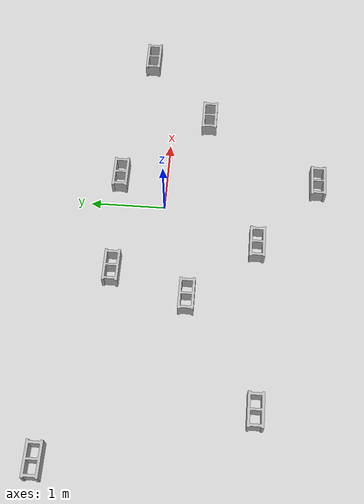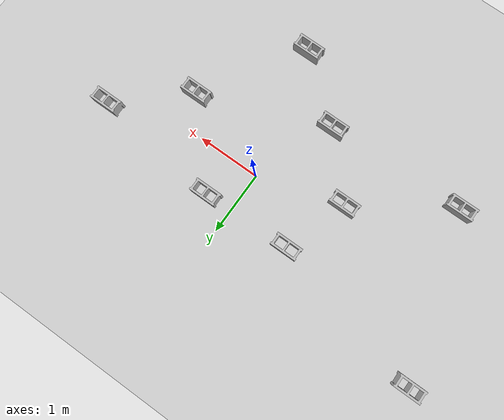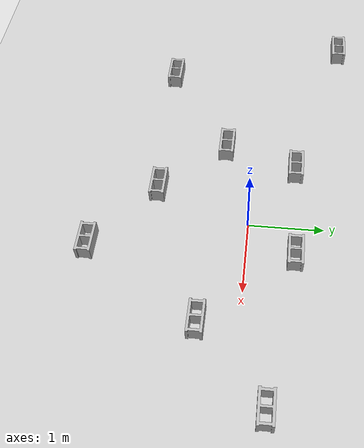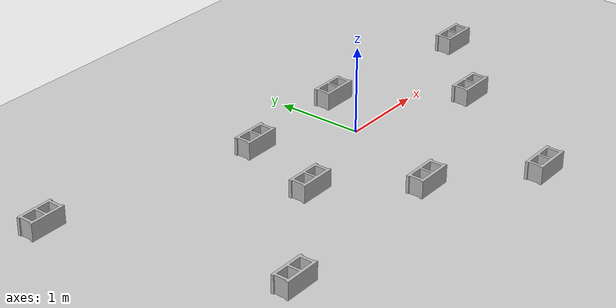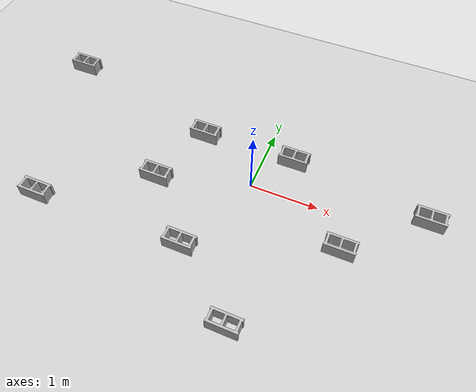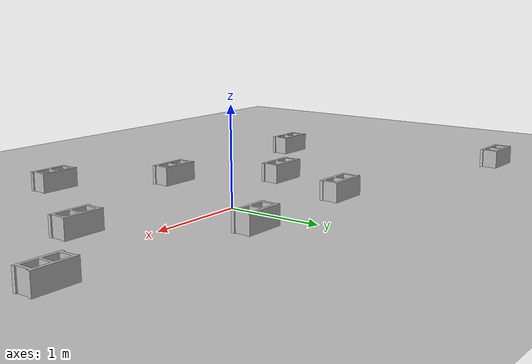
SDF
<sdf version="1.7">
 <world name="default">
  <light name="sun" type="directional">
   <pose>0 0 10 0 -0 0</pose>
   <diffuse>0.8 0.8 0.8 1</diffuse>
   <specular>0.2 0.2 0.2 1</specular>
   <attenuation>
    <range>1000</range>
    <constant>0.9</constant>
    <linear>0.01</linear>
    <quadratic>0.001</quadratic>
   </attenuation>
   <direction>-0.5 0.1 -0.9</direction>
   <spot><inner_angle>0</inner_angle><outer_angle>0</outer_angle><falloff>0</falloff></spot>
  </light>
  <model name="ground_plane">
   <static>1</static>
   <link name="link">
    <collision name="collision">
     <geometry><plane><normal>0 0 1</normal><size>100 100</size></plane></geometry>
     <surface>
      <contact><collide_bitmask>65535</collide_bitmask></contact>
      <friction><ode><mu>100</mu><mu2>50</mu2></ode></friction>
     </surface>
    </collision>
    <visual name="visual">
     <cast_shadows>0</cast_shadows>
     <geometry><plane><normal>0 0 1</normal><size>100 100</size></plane></geometry>
     <material>
      <script><uri>file://media/materials/scripts/gazebo.material</uri><name>Gazebo/Grey</name></script>
     </material>
    </visual>
   </link>
  </model>
  <gravity>0 0 -9.8</gravity>
  <magnetic_field>6e-06 2.3e-05 -4.2e-05</magnetic_field>
  <atmosphere type="adiabatic"/>
  <physics type="ode">
   <max_step_size>0.001</max_step_size>
   <real_time_factor>1</real_time_factor>
   <real_time_update_rate>1000</real_time_update_rate>
  </physics>
  <scene><ambient>0.4 0.4 0.4 1</ambient><background>0.7 0.7 0.7 1</background><shadows>1</shadows></scene>
  <audio><device>default</device></audio>
  <spherical_coordinates>
   <surface_model>EARTH_WGS84</surface_model>
   <latitude_deg>0</latitude_deg>
   <longitude_deg>0</longitude_deg>
   <elevation>0</elevation>
   <heading_deg>0</heading_deg>
  </spherical_coordinates>
  <model name="cinder_block">
   <link name="link">
    <inertial>
     <pose>0 0 0.1016 0 -0 0</pose>
     <mass>5</mass>
     <inertia>
      <ixx>0.028705</ixx>
      <ixy>0</ixy>
      <iyy>0.073708</iyy>
      <ixz>0</ixz>
      <iyz>0</iyz>
      <izz>0.06908</izz>
     </inertia>
    </inertial>
    <visual name="visual">
     <geometry><mesh><uri>model://cinder_block/meshes/cinder_block.dae</uri></mesh></geometry>
    </visual>
    <collision name="left">
     <pose>0 -0.08465 0.1016 0 -0 0</pose>
     <geometry><box><size>0.43495 0.0339 0.2032</size></box></geometry>
     <surface>
      <contact><ode><max_vel>0.1</max_vel><min_depth>0.001</min_depth></ode></contact>
      <friction><ode><mu>1</mu><mu2>1</mu2></ode></friction>
     </surface>
    </collision>
    <collision name="right">
     <pose>0 0.08465 0.1016 0 -0 0</pose>
     <geometry><box><size>0.43495 0.0339 0.2032</size></box></geometry>
     <surface>
      <contact><ode><max_vel>0.1</max_vel><min_depth>0.001</min_depth></ode></contact>
      <friction><ode><mu>1</mu><mu2>1</mu2></ode></friction>
     </surface>
    </collision>
    <collision name="front">
     <pose>0.18625 0 0.1016 0 -0 0</pose>
     <geometry><box><size>0.0339 0.1354 0.203</size></box></geometry>
     <surface>
      <contact><ode><max_vel>0.1</max_vel><min_depth>0.001</min_depth></ode></contact>
      <friction><ode><mu>1</mu><mu2>1</mu2></ode></friction>
     </surface>
    </collision>
    <collision name="middle">
     <pose>0 0 0.1016 0 -0 0</pose>
     <geometry><box><size>0.0339 0.1354 0.203</size></box></geometry>
     <surface>
      <contact><ode><max_vel>0.1</max_vel><min_depth>0.001</min_depth></ode></contact>
      <friction><ode><mu>1</mu><mu2>1</mu2></ode></friction>
     </surface>
    </collision>
    <collision name="back">
     <pose>-0.18625 0 0.1016 0 -0 0</pose>
     <geometry><box><size>0.0339 0.1354 0.203</size></box></geometry>
     <surface>
      <contact><ode><max_vel>0.1</max_vel><min_depth>0.001</min_depth></ode></contact>
      <friction><ode><mu>1</mu><mu2>1</mu2></ode></friction>
     </surface>
    </collision>
   </link>
   <pose>-0.977687 0.600716 -6e-06 -1e-06 2.8e-05 -0</pose>
  </model>
  <model name="cinder_block_0">
   <link name="link">
    <inertial>
     <pose>0 0 0.1016 0 -0 0</pose>
     <mass>5</mass>
     <inertia>
      <ixx>0.028705</ixx>
      <ixy>0</ixy>
      <iyy>0.073708</iyy>
      <ixz>0</ixz>
      <iyz>0</iyz>
      <izz>0.06908</izz>
     </inertia>
    </inertial>
    <visual name="visual">
     <geometry><mesh><uri>model://cinder_block/meshes/cinder_block.dae</uri></mesh></geometry>
    </visual>
    <collision name="left">
     <pose>0 -0.08465 0.1016 0 -0 0</pose>
     <geometry><box><size>0.43495 0.0339 0.2032</size></box></geometry>
     <surface>
      <contact><ode><max_vel>0.1</max_vel><min_depth>0.001</min_depth></ode></contact>
      <friction><ode><mu>1</mu><mu2>1</mu2></ode></friction>
     </surface>
    </collision>
    <collision name="right">
     <pose>0 0.08465 0.1016 0 -0 0</pose>
     <geometry><box><size>0.43495 0.0339 0.2032</size></box></geometry>
     <surface>
      <contact><ode><max_vel>0.1</max_vel><min_depth>0.001</min_depth></ode></contact>
      <friction><ode><mu>1</mu><mu2>1</mu2></ode></friction>
     </surface>
    </collision>
    <collision name="front">
     <pose>0.18625 0 0.1016 0 -0 0</pose>
     <geometry><box><size>0.0339 0.1354 0.203</size></box></geometry>
     <surface>
      <contact><ode><max_vel>0.1</max_vel><min_depth>0.001</min_depth></ode></contact>
      <friction><ode><mu>1</mu><mu2>1</mu2></ode></friction>
     </surface>
    </collision>
    <collision name="middle">
     <pose>0 0 0.1016 0 -0 0</pose>
     <geometry><box><size>0.0339 0.1354 0.203</size></box></geometry>
     <surface>
      <contact><ode><max_vel>0.1</max_vel><min_depth>0.001</min_depth></ode></contact>
      <friction><ode><mu>1</mu><mu2>1</mu2></ode></friction>
     </surface>
    </collision>
    <collision name="back">
     <pose>-0.18625 0 0.1016 0 -0 0</pose>
     <geometry><box><size>0.0339 0.1354 0.203</size></box></geometry>
     <surface>
      <contact><ode><max_vel>0.1</max_vel><min_depth>0.001</min_depth></ode></contact>
      <friction><ode><mu>1</mu><mu2>1</mu2></ode></friction>
     </surface>
    </collision>
   </link>
   <pose>-1.30271 -0.390411 -6e-06 -1e-06 2.8e-05 -0</pose>
  </model>
  <model name="cinder_block_1">
   <link name="link">
    <inertial>
     <pose>0 0 0.1016 0 -0 0</pose>
     <mass>5</mass>
     <inertia>
      <ixx>0.028705</ixx>
      <ixy>0</ixy>
      <iyy>0.073708</iyy>
      <ixz>0</ixz>
      <iyz>0</iyz>
      <izz>0.06908</izz>
     </inertia>
    </inertial>
    <visual name="visual">
     <geometry><mesh><uri>model://cinder_block/meshes/cinder_block.dae</uri></mesh></geometry>
    </visual>
    <collision name="left">
     <pose>0 -0.08465 0.1016 0 -0 0</pose>
     <geometry><box><size>0.43495 0.0339 0.2032</size></box></geometry>
     <surface>
      <contact><ode><max_vel>0.1</max_vel><min_depth>0.001</min_depth></ode></contact>
      <friction><ode><mu>1</mu><mu2>1</mu2></ode></friction>
     </surface>
    </collision>
    <collision name="right">
     <pose>0 0.08465 0.1016 0 -0 0</pose>
     <geometry><box><size>0.43495 0.0339 0.2032</size></box></geometry>
     <surface>
      <contact><ode><max_vel>0.1</max_vel><min_depth>0.001</min_depth></ode></contact>
      <friction><ode><mu>1</mu><mu2>1</mu2></ode></friction>
     </surface>
    </collision>
    <collision name="front">
     <pose>0.18625 0 0.1016 0 -0 0</pose>
     <geometry><box><size>0.0339 0.1354 0.203</size></box></geometry>
     <surface>
      <contact><ode><max_vel>0.1</max_vel><min_depth>0.001</min_depth></ode></contact>
      <friction><ode><mu>1</mu><mu2>1</mu2></ode></friction>
     </surface>
    </collision>
    <collision name="middle">
     <pose>0 0 0.1016 0 -0 0</pose>
     <geometry><box><size>0.0339 0.1354 0.203</size></box></geometry>
     <surface>
      <contact><ode><max_vel>0.1</max_vel><min_depth>0.001</min_depth></ode></contact>
      <friction><ode><mu>1</mu><mu2>1</mu2></ode></friction>
     </surface>
    </collision>
    <collision name="back">
     <pose>-0.18625 0 0.1016 0 -0 0</pose>
     <geometry><box><size>0.0339 0.1354 0.203</size></box></geometry>
     <surface>
      <contact><ode><max_vel>0.1</max_vel><min_depth>0.001</min_depth></ode></contact>
      <friction><ode><mu>1</mu><mu2>1</mu2></ode></friction>
     </surface>
    </collision>
   </link>
   <pose>0.425948 0.633581 -6e-06 -1e-06 2.8e-05 -0</pose>
  </model>
  <model name="cinder_block_2">
   <link name="link">
    <inertial>
     <pose>0 0 0.1016 0 -0 0</pose>
     <mass>5</mass>
     <inertia>
      <ixx>0.028705</ixx>
      <ixy>0</ixy>
      <iyy>0.073708</iyy>
      <ixz>0</ixz>
      <iyz>0</iyz>
      <izz>0.06908</izz>
     </inertia>
    </inertial>
    <visual name="visual">
     <geometry><mesh><uri>model://cinder_block/meshes/cinder_block.dae</uri></mesh></geometry>
    </visual>
    <collision name="left">
     <pose>0 -0.08465 0.1016 0 -0 0</pose>
     <geometry><box><size>0.43495 0.0339 0.2032</size></box></geometry>
     <surface>
      <contact><ode><max_vel>0.1</max_vel><min_depth>0.001</min_depth></ode></contact>
      <friction><ode><mu>1</mu><mu2>1</mu2></ode></friction>
     </surface>
    </collision>
    <collision name="right">
     <pose>0 0.08465 0.1016 0 -0 0</pose>
     <geometry><box><size>0.43495 0.0339 0.2032</size></box></geometry>
     <surface>
      <contact><ode><max_vel>0.1</max_vel><min_depth>0.001</min_depth></ode></contact>
      <friction><ode><mu>1</mu><mu2>1</mu2></ode></friction>
     </surface>
    </collision>
    <collision name="front">
     <pose>0.18625 0 0.1016 0 -0 0</pose>
     <geometry><box><size>0.0339 0.1354 0.203</size></box></geometry>
     <surface>
      <contact><ode><max_vel>0.1</max_vel><min_depth>0.001</min_depth></ode></contact>
      <friction><ode><mu>1</mu><mu2>1</mu2></ode></friction>
     </surface>
    </collision>
    <collision name="middle">
     <pose>0 0 0.1016 0 -0 0</pose>
     <geometry><box><size>0.0339 0.1354 0.203</size></box></geometry>
     <surface>
      <contact><ode><max_vel>0.1</max_vel><min_depth>0.001</min_depth></ode></contact>
      <friction><ode><mu>1</mu><mu2>1</mu2></ode></friction>
     </surface>
    </collision>
    <collision name="back">
     <pose>-0.18625 0 0.1016 0 -0 0</pose>
     <geometry><box><size>0.0339 0.1354 0.203</size></box></geometry>
     <surface>
      <contact><ode><max_vel>0.1</max_vel><min_depth>0.001</min_depth></ode></contact>
      <friction><ode><mu>1</mu><mu2>1</mu2></ode></friction>
     </surface>
    </collision>
   </link>
   <pose>1.45443 -0.519991 -6e-06 -1e-06 2.8e-05 -0</pose>
  </model>
  <model name="cinder_block_3">
   <link name="link">
    <inertial>
     <pose>0 0 0.1016 0 -0 0</pose>
     <mass>5</mass>
     <inertia>
      <ixx>0.028705</ixx>
      <ixy>0</ixy>
      <iyy>0.073708</iyy>
      <ixz>0</ixz>
      <iyz>0</iyz>
      <izz>0.06908</izz>
     </inertia>
    </inertial>
    <visual name="visual">
     <geometry><mesh><uri>model://cinder_block/meshes/cinder_block.dae</uri></mesh></geometry>
    </visual>
    <collision name="left">
     <pose>0 -0.08465 0.1016 0 -0 0</pose>
     <geometry><box><size>0.43495 0.0339 0.2032</size></box></geometry>
     <surface>
      <contact><ode><max_vel>0.1</max_vel><min_depth>0.001</min_depth></ode></contact>
      <friction><ode><mu>1</mu><mu2>1</mu2></ode></friction>
     </surface>
    </collision>
    <collision name="right">
     <pose>0 0.08465 0.1016 0 -0 0</pose>
     <geometry><box><size>0.43495 0.0339 0.2032</size></box></geometry>
     <surface>
      <contact><ode><max_vel>0.1</max_vel><min_depth>0.001</min_depth></ode></contact>
      <friction><ode><mu>1</mu><mu2>1</mu2></ode></friction>
     </surface>
    </collision>
    <collision name="front">
     <pose>0.18625 0 0.1016 0 -0 0</pose>
     <geometry><box><size>0.0339 0.1354 0.203</size></box></geometry>
     <surface>
      <contact><ode><max_vel>0.1</max_vel><min_depth>0.001</min_depth></ode></contact>
      <friction><ode><mu>1</mu><mu2>1</mu2></ode></friction>
     </surface>
    </collision>
    <collision name="middle">
     <pose>0 0 0.1016 0 -0 0</pose>
     <geometry><box><size>0.0339 0.1354 0.203</size></box></geometry>
     <surface>
      <contact><ode><max_vel>0.1</max_vel><min_depth>0.001</min_depth></ode></contact>
      <friction><ode><mu>1</mu><mu2>1</mu2></ode></friction>
     </surface>
    </collision>
    <collision name="back">
     <pose>-0.18625 0 0.1016 0 -0 0</pose>
     <geometry><box><size>0.0339 0.1354 0.203</size></box></geometry>
     <surface>
      <contact><ode><max_vel>0.1</max_vel><min_depth>0.001</min_depth></ode></contact>
      <friction><ode><mu>1</mu><mu2>1</mu2></ode></friction>
     </surface>
    </collision>
   </link>
   <pose>0.477693 -2.05021 -6e-06 -1e-06 2.8e-05 -0</pose>
  </model>
  <model name="cinder_block_4">
   <link name="link">
    <inertial>
     <pose>0 0 0.1016 0 -0 0</pose>
     <mass>5</mass>
     <inertia>
      <ixx>0.028705</ixx>
      <ixy>0</ixy>
      <iyy>0.073708</iyy>
      <ixz>0</ixz>
      <iyz>0</iyz>
      <izz>0.06908</izz>
     </inertia>
    </inertial>
    <visual name="visual">
     <geometry><mesh><uri>model://cinder_block/meshes/cinder_block.dae</uri></mesh></geometry>
    </visual>
    <collision name="left">
     <pose>0 -0.08465 0.1016 0 -0 0</pose>
     <geometry><box><size>0.43495 0.0339 0.2032</size></box></geometry>
     <surface>
      <contact><ode><max_vel>0.1</max_vel><min_depth>0.001</min_depth></ode></contact>
      <friction><ode><mu>1</mu><mu2>1</mu2></ode></friction>
     </surface>
    </collision>
    <collision name="right">
     <pose>0 0.08465 0.1016 0 -0 0</pose>
     <geometry><box><size>0.43495 0.0339 0.2032</size></box></geometry>
     <surface>
      <contact><ode><max_vel>0.1</max_vel><min_depth>0.001</min_depth></ode></contact>
      <friction><ode><mu>1</mu><mu2>1</mu2></ode></friction>
     </surface>
    </collision>
    <collision name="front">
     <pose>0.18625 0 0.1016 0 -0 0</pose>
     <geometry><box><size>0.0339 0.1354 0.203</size></box></geometry>
     <surface>
      <contact><ode><max_vel>0.1</max_vel><min_depth>0.001</min_depth></ode></contact>
      <friction><ode><mu>1</mu><mu2>1</mu2></ode></friction>
     </surface>
    </collision>
    <collision name="middle">
     <pose>0 0 0.1016 0 -0 0</pose>
     <geometry><box><size>0.0339 0.1354 0.203</size></box></geometry>
     <surface>
      <contact><ode><max_vel>0.1</max_vel><min_depth>0.001</min_depth></ode></contact>
      <friction><ode><mu>1</mu><mu2>1</mu2></ode></friction>
     </surface>
    </collision>
    <collision name="back">
     <pose>-0.18625 0 0.1016 0 -0 0</pose>
     <geometry><box><size>0.0339 0.1354 0.203</size></box></geometry>
     <surface>
      <contact><ode><max_vel>0.1</max_vel><min_depth>0.001</min_depth></ode></contact>
      <friction><ode><mu>1</mu><mu2>1</mu2></ode></friction>
     </surface>
    </collision>
   </link>
   <pose>-0.505494 -1.25913 -6e-06 0 2.8e-05 0</pose>
  </model>
  <model name="cinder_block_5">
   <link name="link">
    <inertial>
     <pose>0 0 0.1016 0 -0 0</pose>
     <mass>5</mass>
     <inertia>
      <ixx>0.028705</ixx>
      <ixy>0</ixy>
      <iyy>0.073708</iyy>
      <ixz>0</ixz>
      <iyz>0</iyz>
      <izz>0.06908</izz>
     </inertia>
    </inertial>
    <visual name="visual">
     <geometry><mesh><uri>model://cinder_block/meshes/cinder_block.dae</uri></mesh></geometry>
    </visual>
    <collision name="left">
     <pose>0 -0.08465 0.1016 0 -0 0</pose>
     <geometry><box><size>0.43495 0.0339 0.2032</size></box></geometry>
     <surface>
      <contact><ode><max_vel>0.1</max_vel><min_depth>0.001</min_depth></ode></contact>
      <friction><ode><mu>1</mu><mu2>1</mu2></ode></friction>
     </surface>
    </collision>
    <collision name="right">
     <pose>0 0.08465 0.1016 0 -0 0</pose>
     <geometry><box><size>0.43495 0.0339 0.2032</size></box></geometry>
     <surface>
      <contact><ode><max_vel>0.1</max_vel><min_depth>0.001</min_depth></ode></contact>
      <friction><ode><mu>1</mu><mu2>1</mu2></ode></friction>
     </surface>
    </collision>
    <collision name="front">
     <pose>0.18625 0 0.1016 0 -0 0</pose>
     <geometry><box><size>0.0339 0.1354 0.203</size></box></geometry>
     <surface>
      <contact><ode><max_vel>0.1</max_vel><min_depth>0.001</min_depth></ode></contact>
      <friction><ode><mu>1</mu><mu2>1</mu2></ode></friction>
     </surface>
    </collision>
    <collision name="middle">
     <pose>0 0 0.1016 0 -0 0</pose>
     <geometry><box><size>0.0339 0.1354 0.203</size></box></geometry>
     <surface>
      <contact><ode><max_vel>0.1</max_vel><min_depth>0.001</min_depth></ode></contact>
      <friction><ode><mu>1</mu><mu2>1</mu2></ode></friction>
     </surface>
    </collision>
    <collision name="back">
     <pose>-0.18625 0 0.1016 0 -0 0</pose>
     <geometry><box><size>0.0339 0.1354 0.203</size></box></geometry>
     <surface>
      <contact><ode><max_vel>0.1</max_vel><min_depth>0.001</min_depth></ode></contact>
      <friction><ode><mu>1</mu><mu2>1</mu2></ode></friction>
     </surface>
    </collision>
   </link>
   <pose>-3.46657 1.20811 -6e-06 0 2.8e-05 0</pose>
  </model>
  <model name="cinder_block_6">
   <link name="link">
    <inertial>
     <pose>0 0 0.1016 0 -0 0</pose>
     <mass>5</mass>
     <inertia>
      <ixx>0.028705</ixx>
      <ixy>0</ixy>
      <iyy>0.073708</iyy>
      <ixz>0</ixz>
      <iyz>0</iyz>
      <izz>0.06908</izz>
     </inertia>
    </inertial>
    <visual name="visual">
     <geometry><mesh><uri>model://cinder_block/meshes/cinder_block.dae</uri></mesh></geometry>
    </visual>
    <collision name="left">
     <pose>0 -0.08465 0.1016 0 -0 0</pose>
     <geometry><box><size>0.43495 0.0339 0.2032</size></box></geometry>
     <surface>
      <contact><ode><max_vel>0.1</max_vel><min_depth>0.001</min_depth></ode></contact>
      <friction><ode><mu>1</mu><mu2>1</mu2></ode></friction>
     </surface>
    </collision>
    <collision name="right">
     <pose>0 0.08465 0.1016 0 -0 0</pose>
     <geometry><box><size>0.43495 0.0339 0.2032</size></box></geometry>
     <surface>
      <contact><ode><max_vel>0.1</max_vel><min_depth>0.001</min_depth></ode></contact>
      <friction><ode><mu>1</mu><mu2>1</mu2></ode></friction>
     </surface>
    </collision>
    <collision name="front">
     <pose>0.18625 0 0.1016 0 -0 0</pose>
     <geometry><box><size>0.0339 0.1354 0.203</size></box></geometry>
     <surface>
      <contact><ode><max_vel>0.1</max_vel><min_depth>0.001</min_depth></ode></contact>
      <friction><ode><mu>1</mu><mu2>1</mu2></ode></friction>
     </surface>
    </collision>
    <collision name="middle">
     <pose>0 0 0.1016 0 -0 0</pose>
     <geometry><box><size>0.0339 0.1354 0.203</size></box></geometry>
     <surface>
      <contact><ode><max_vel>0.1</max_vel><min_depth>0.001</min_depth></ode></contact>
      <friction><ode><mu>1</mu><mu2>1</mu2></ode></friction>
     </surface>
    </collision>
    <collision name="back">
     <pose>-0.18625 0 0.1016 0 -0 0</pose>
     <geometry><box><size>0.0339 0.1354 0.203</size></box></geometry>
     <surface>
      <contact><ode><max_vel>0.1</max_vel><min_depth>0.001</min_depth></ode></contact>
      <friction><ode><mu>1</mu><mu2>1</mu2></ode></friction>
     </surface>
    </collision>
   </link>
   <pose>2.45498 0.368173 -6e-06 0 2.8e-05 0</pose>
  </model>
  <model name="cinder_block_7">
   <link name="link">
    <inertial>
     <pose>0 0 0.1016 0 -0 0</pose>
     <mass>5</mass>
     <inertia>
      <ixx>0.028705</ixx>
      <ixy>0</ixy>
      <iyy>0.073708</iyy>
      <ixz>0</ixz>
      <iyz>0</iyz>
      <izz>0.06908</izz>
     </inertia>
    </inertial>
    <visual name="visual">
     <geometry><mesh><uri>model://cinder_block/meshes/cinder_block.dae</uri></mesh></geometry>
    </visual>
    <collision name="left">
     <pose>0 -0.08465 0.1016 0 -0 0</pose>
     <geometry><box><size>0.43495 0.0339 0.2032</size></box></geometry>
     <surface>
      <contact><ode><max_vel>0.1</max_vel><min_depth>0.001</min_depth></ode></contact>
      <friction><ode><mu>1</mu><mu2>1</mu2></ode></friction>
     </surface>
    </collision>
    <collision name="right">
     <pose>0 0.08465 0.1016 0 -0 0</pose>
     <geometry><box><size>0.43495 0.0339 0.2032</size></box></geometry>
     <surface>
      <contact><ode><max_vel>0.1</max_vel><min_depth>0.001</min_depth></ode></contact>
      <friction><ode><mu>1</mu><mu2>1</mu2></ode></friction>
     </surface>
    </collision>
    <collision name="front">
     <pose>0.18625 0 0.1016 0 -0 0</pose>
     <geometry><box><size>0.0339 0.1354 0.203</size></box></geometry>
     <surface>
      <contact><ode><max_vel>0.1</max_vel><min_depth>0.001</min_depth></ode></contact>
      <friction><ode><mu>1</mu><mu2>1</mu2></ode></friction>
     </surface>
    </collision>
    <collision name="middle">
     <pose>0 0 0.1016 0 -0 0</pose>
     <geometry><box><size>0.0339 0.1354 0.203</size></box></geometry>
     <surface>
      <contact><ode><max_vel>0.1</max_vel><min_depth>0.001</min_depth></ode></contact>
      <friction><ode><mu>1</mu><mu2>1</mu2></ode></friction>
     </surface>
    </collision>
    <collision name="back">
     <pose>-0.18625 0 0.1016 0 -0 0</pose>
     <geometry><box><size>0.0339 0.1354 0.203</size></box></geometry>
     <surface>
      <contact><ode><max_vel>0.1</max_vel><min_depth>0.001</min_depth></ode></contact>
      <friction><ode><mu>1</mu><mu2>1</mu2></ode></friction>
     </surface>
    </collision>
   </link>
   <pose>-2.71252 -1.31197 -6e-06 0 2.8e-05 0</pose>
  </model>
 </world>
</sdf>
